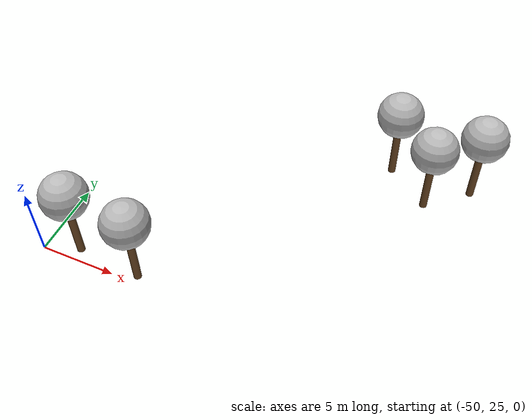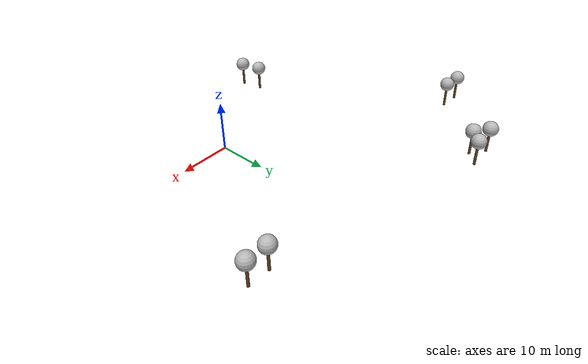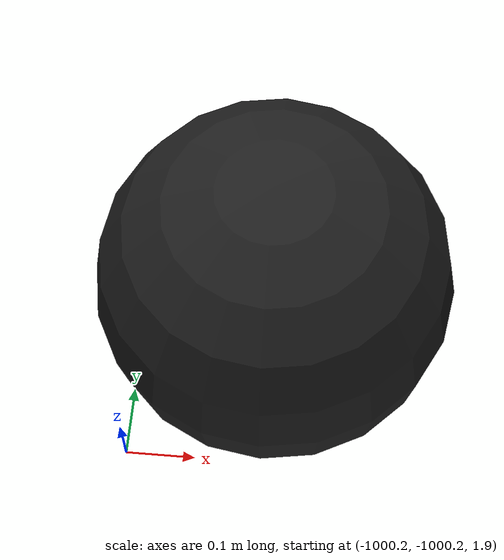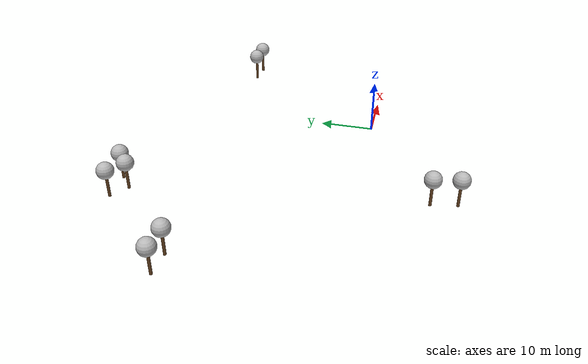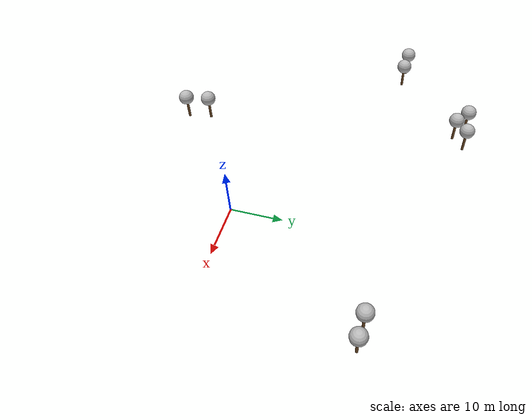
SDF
<sdf version="1.7">
 <world name="default">
  <plugin name="mrs_gazebo_static_transform_republisher_plugin" filename="libMrsGazeboCommonResources_StaticTransformRepublisher.so"/>
  <spherical_coordinates>
   <surface_model>EARTH_WGS84</surface_model>
   <latitude_deg>47.3977</latitude_deg>
   <longitude_deg>8.54559</longitude_deg>
   <elevation>0</elevation>
   <heading_deg>0</heading_deg>
  </spherical_coordinates>
  <physics name="default_physics" default="0" type="ode">
   <ode>
    <solver>
     <type>quick</type>
     <iters>10</iters>
     <sor>1.3</sor>
     <use_dynamic_moi_rescaling>0</use_dynamic_moi_rescaling>
    </solver>
    <constraints>
     <cfm>0</cfm>
     <erp>0.2</erp>
     <contact_max_correcting_vel>1000</contact_max_correcting_vel>
     <contact_surface_layer>0.001</contact_surface_layer>
    </constraints>
   </ode>
   <max_step_size>0.004</max_step_size>
   <real_time_factor>1</real_time_factor>
   <real_time_update_rate>250</real_time_update_rate>
  </physics>
  <scene><shadows>0</shadows><ambient>0.4 0.4 0.4 1</ambient><background>0.7 0.7 0.7 1</background></scene>
  <model name="the_void">
   <static>1</static>
   <link name="link">
    <pose>0 0 0.1 0 -0 0</pose>
    <visual name="the_void">
     <pose>0 0 2 0 -0 0</pose>
     <geometry><sphere><radius>0.25</radius></sphere></geometry>
     <material>
      <script><uri>file://media/materials/scripts/Gazebo.material</uri><name>Gazebo/Black</name></script>
     </material>
    </visual>
   </link>
   <pose>-1000 -1000 0 0 -0 0</pose>
  </model>
  <plugin name="mrs_gazebo_rviz_cam_synchronizer" filename="libMrsGazeboCommonResources_RvizCameraSynchronizer.so">
   <target_frame_id>gazebo_user_camera</target_frame_id>
   <world_origin_frame_id>uav1/gps_origin</world_origin_frame_id>
   <frame_to_follow>uav1</frame_to_follow>
  </plugin>
  <gravity>0 0 -9.8066</gravity>
  <magnetic_field>6e-06 2.3e-05 -4.2e-05</magnetic_field>
  <atmosphere type="adiabatic"/>
  <light name="user_directional_light_0" type="directional">
   <pose>18.5939 6.77546 1 0 -0 0</pose>
   <diffuse>0.5 0.5 0.5 1</diffuse>
   <specular>0.1 0.1 0.1 1</specular>
   <direction>0.1 0.1 -0.9</direction>
   <attenuation>
    <range>20</range>
    <constant>0.5</constant>
    <linear>0.01</linear>
    <quadratic>0.001</quadratic>
   </attenuation>
   <spot><inner_angle>0</inner_angle><outer_angle>0</outer_angle><falloff>0</falloff></spot>
  </light>
  <light name="user_directional_light_1" type="directional">
   <pose>-30.2986 28.8316 1 0 -0 0</pose>
   <diffuse>0.5 0.5 0.5 1</diffuse>
   <specular>0.1 0.1 0.1 1</specular>
   <direction>0.1 0.1 -0.9</direction>
   <attenuation>
    <range>20</range>
    <constant>0.5</constant>
    <linear>0.01</linear>
    <quadratic>0.001</quadratic>
   </attenuation>
   <spot><inner_angle>0</inner_angle><outer_angle>0</outer_angle><falloff>0</falloff></spot>
  </light>
  <light name="sun" type="directional">
   <pose>14.107 -35.5568 10 0 -0 0</pose>
   <diffuse>0.8 0.8 0.8 1</diffuse>
   <specular>0.2 0.2 0.2 1</specular>
   <attenuation>
    <range>1000</range>
    <constant>0.9</constant>
    <linear>0.01</linear>
    <quadratic>0.001</quadratic>
   </attenuation>
   <direction>-0.5 0.1 -0.9</direction>
   <spot><inner_angle>0</inner_angle><outer_angle>0</outer_angle><falloff>0</falloff></spot>
  </light>
  <model name="tree_simple_0_clone">
   <static>1</static>
   <link name="link">
    <pose>0 0 0.1 0 -0 0</pose>
    <inertial>
     <mass>666</mass>
     <inertia>
      <ixx>0.0861167</ixx>
      <ixy>0</ixy>
      <ixz>0</ixz>
      <iyy>0.0861167</iyy>
      <iyz>0</iyz>
      <izz>0.0861167</izz>
     </inertia>
    </inertial>
    <collision name="collision_trunk">
     <pose>0 0 2 0 -0 0</pose>
     <geometry><cylinder><radius>0.25</radius><length>4</length></cylinder></geometry>
     <surface>
      <contact>
       <poissons_ratio>0.347</poissons_ratio>
       <elastic_modulus>8.8e+09</elastic_modulus>
       <ode><kp>100000</kp><kd>100</kd><max_vel>100</max_vel><min_depth>0.001</min_depth></ode>
      </contact>
      <friction>
       <torsional>
        <coefficient>1</coefficient>
        <use_patch_radius>0</use_patch_radius>
        <surface_radius>0.01</surface_radius>
       </torsional>
      </friction>
     </surface>
    </collision>
    <collision name="collision_treetop">
     <pose>0 0 5.2 0 -0 0</pose>
     <geometry><sphere><radius>1.5</radius></sphere></geometry>
     <surface>
      <contact>
       <poissons_ratio>0.347</poissons_ratio>
       <elastic_modulus>8.8e+09</elastic_modulus>
       <ode><kp>100000</kp><kd>100</kd><max_vel>100</max_vel><min_depth>0.001</min_depth></ode>
      </contact>
      <friction>
       <torsional>
        <coefficient>1</coefficient>
        <use_patch_radius>0</use_patch_radius>
        <surface_radius>0.01</surface_radius>
       </torsional>
      </friction>
     </surface>
    </collision>
    <visual name="trunk">
     <pose>0 0 2 0 -0 0</pose>
     <geometry><cylinder><radius>0.25</radius><length>4</length></cylinder></geometry>
     <material>
      <script>
       <uri>model://tree_simple/scripts</uri>
       <uri>model://tree_simple/materials/textures</uri>
       <name>TreeSimple/Trunk</name>
      </script>
     </material>
    </visual>
    <visual name="treetop">
     <pose>0 0 5.2 0 -0 0</pose>
     <geometry><sphere><radius>1.5</radius></sphere></geometry>
     <material>
      <script>
       <uri>model://tree_simple/scripts</uri>
       <uri>model://tree_simple/materials/textures</uri>
       <name>TreeSimple/Treetop</name>
      </script>
     </material>
    </visual>
   </link>
   <pose>-43.3723 25.4571 0 0 -0 0</pose>
  </model>
  <model name="tree_simple_0_clone_0">
   <static>1</static>
   <link name="link">
    <pose>0 0 0.1 0 -0 0</pose>
    <inertial>
     <mass>666</mass>
     <inertia>
      <ixx>0.0861167</ixx>
      <ixy>0</ixy>
      <ixz>0</ixz>
      <iyy>0.0861167</iyy>
      <iyz>0</iyz>
      <izz>0.0861167</izz>
     </inertia>
    </inertial>
    <collision name="collision_trunk">
     <pose>0 0 2 0 -0 0</pose>
     <geometry><cylinder><radius>0.25</radius><length>4</length></cylinder></geometry>
     <surface>
      <contact>
       <poissons_ratio>0.347</poissons_ratio>
       <elastic_modulus>8.8e+09</elastic_modulus>
       <ode><kp>100000</kp><kd>100</kd><max_vel>100</max_vel><min_depth>0.001</min_depth></ode>
      </contact>
      <friction>
       <torsional>
        <coefficient>1</coefficient>
        <use_patch_radius>0</use_patch_radius>
        <surface_radius>0.01</surface_radius>
       </torsional>
      </friction>
     </surface>
    </collision>
    <collision name="collision_treetop">
     <pose>0 0 5.2 0 -0 0</pose>
     <geometry><sphere><radius>1.5</radius></sphere></geometry>
     <surface>
      <contact>
       <poissons_ratio>0.347</poissons_ratio>
       <elastic_modulus>8.8e+09</elastic_modulus>
       <ode><kp>100000</kp><kd>100</kd><max_vel>100</max_vel><min_depth>0.001</min_depth></ode>
      </contact>
      <friction>
       <torsional>
        <coefficient>1</coefficient>
        <use_patch_radius>0</use_patch_radius>
        <surface_radius>0.01</surface_radius>
       </torsional>
      </friction>
     </surface>
    </collision>
    <visual name="trunk">
     <pose>0 0 2 0 -0 0</pose>
     <geometry><cylinder><radius>0.25</radius><length>4</length></cylinder></geometry>
     <material>
      <script>
       <uri>model://tree_simple/scripts</uri>
       <uri>model://tree_simple/materials/textures</uri>
       <name>TreeSimple/Trunk</name>
      </script>
     </material>
    </visual>
    <visual name="treetop">
     <pose>0 0 5.2 0 -0 0</pose>
     <geometry><sphere><radius>1.5</radius></sphere></geometry>
     <material>
      <script>
       <uri>model://tree_simple/scripts</uri>
       <uri>model://tree_simple/materials/textures</uri>
       <name>TreeSimple/Treetop</name>
      </script>
     </material>
    </visual>
   </link>
   <pose>-47.7139 25.7716 0 0 -0 0</pose>
  </model>
  <model name="tree_simple_0_clone_1">
   <static>1</static>
   <link name="link">
    <pose>0 0 0.1 0 -0 0</pose>
    <inertial>
     <mass>666</mass>
     <inertia>
      <ixx>0.0861167</ixx>
      <ixy>0</ixy>
      <ixz>0</ixz>
      <iyy>0.0861167</iyy>
      <iyz>0</iyz>
      <izz>0.0861167</izz>
     </inertia>
    </inertial>
    <collision name="collision_trunk">
     <pose>0 0 2 0 -0 0</pose>
     <geometry><cylinder><radius>0.25</radius><length>4</length></cylinder></geometry>
     <surface>
      <contact>
       <poissons_ratio>0.347</poissons_ratio>
       <elastic_modulus>8.8e+09</elastic_modulus>
       <ode><kp>100000</kp><kd>100</kd><max_vel>100</max_vel><min_depth>0.001</min_depth></ode>
      </contact>
      <friction>
       <torsional>
        <coefficient>1</coefficient>
        <use_patch_radius>0</use_patch_radius>
        <surface_radius>0.01</surface_radius>
       </torsional>
      </friction>
     </surface>
    </collision>
    <collision name="collision_treetop">
     <pose>0 0 5.2 0 -0 0</pose>
     <geometry><sphere><radius>1.5</radius></sphere></geometry>
     <surface>
      <contact>
       <poissons_ratio>0.347</poissons_ratio>
       <elastic_modulus>8.8e+09</elastic_modulus>
       <ode><kp>100000</kp><kd>100</kd><max_vel>100</max_vel><min_depth>0.001</min_depth></ode>
      </contact>
      <friction>
       <torsional>
        <coefficient>1</coefficient>
        <use_patch_radius>0</use_patch_radius>
        <surface_radius>0.01</surface_radius>
       </torsional>
      </friction>
     </surface>
    </collision>
    <visual name="trunk">
     <pose>0 0 2 0 -0 0</pose>
     <geometry><cylinder><radius>0.25</radius><length>4</length></cylinder></geometry>
     <material>
      <script>
       <uri>model://tree_simple/scripts</uri>
       <uri>model://tree_simple/materials/textures</uri>
       <name>TreeSimple/Trunk</name>
      </script>
     </material>
    </visual>
    <visual name="treetop">
     <pose>0 0 5.2 0 -0 0</pose>
     <geometry><sphere><radius>1.5</radius></sphere></geometry>
     <material>
      <script>
       <uri>model://tree_simple/scripts</uri>
       <uri>model://tree_simple/materials/textures</uri>
       <name>TreeSimple/Treetop</name>
      </script>
     </material>
    </visual>
   </link>
   <pose>-26.3823 40.3611 0 0 -0 0</pose>
  </model>
  <model name="tree_simple_0_clone_2">
   <static>1</static>
   <link name="link">
    <pose>0 0 0.1 0 -0 0</pose>
    <inertial>
     <mass>666</mass>
     <inertia>
      <ixx>0.0861167</ixx>
      <ixy>0</ixy>
      <ixz>0</ixz>
      <iyy>0.0861167</iyy>
      <iyz>0</iyz>
      <izz>0.0861167</izz>
     </inertia>
    </inertial>
    <collision name="collision_trunk">
     <pose>0 0 2 0 -0 0</pose>
     <geometry><cylinder><radius>0.25</radius><length>4</length></cylinder></geometry>
     <surface>
      <contact>
       <poissons_ratio>0.347</poissons_ratio>
       <elastic_modulus>8.8e+09</elastic_modulus>
       <ode><kp>100000</kp><kd>100</kd><max_vel>100</max_vel><min_depth>0.001</min_depth></ode>
      </contact>
      <friction>
       <torsional>
        <coefficient>1</coefficient>
        <use_patch_radius>0</use_patch_radius>
        <surface_radius>0.01</surface_radius>
       </torsional>
      </friction>
     </surface>
    </collision>
    <collision name="collision_treetop">
     <pose>0 0 5.2 0 -0 0</pose>
     <geometry><sphere><radius>1.5</radius></sphere></geometry>
     <surface>
      <contact>
       <poissons_ratio>0.347</poissons_ratio>
       <elastic_modulus>8.8e+09</elastic_modulus>
       <ode><kp>100000</kp><kd>100</kd><max_vel>100</max_vel><min_depth>0.001</min_depth></ode>
      </contact>
      <friction>
       <torsional>
        <coefficient>1</coefficient>
        <use_patch_radius>0</use_patch_radius>
        <surface_radius>0.01</surface_radius>
       </torsional>
      </friction>
     </surface>
    </collision>
    <visual name="trunk">
     <pose>0 0 2 0 -0 0</pose>
     <geometry><cylinder><radius>0.25</radius><length>4</length></cylinder></geometry>
     <material>
      <script>
       <uri>model://tree_simple/scripts</uri>
       <uri>model://tree_simple/materials/textures</uri>
       <name>TreeSimple/Trunk</name>
      </script>
     </material>
    </visual>
    <visual name="treetop">
     <pose>0 0 5.2 0 -0 0</pose>
     <geometry><sphere><radius>1.5</radius></sphere></geometry>
     <material>
      <script>
       <uri>model://tree_simple/scripts</uri>
       <uri>model://tree_simple/materials/textures</uri>
       <name>TreeSimple/Treetop</name>
      </script>
     </material>
    </visual>
   </link>
   <pose>-28.9682 38.1338 0 0 -0 0</pose>
  </model>
  <model name="tree_simple_0_clone_3">
   <static>1</static>
   <link name="link">
    <pose>0 0 0.1 0 -0 0</pose>
    <inertial>
     <mass>666</mass>
     <inertia>
      <ixx>0.0861167</ixx>
      <ixy>0</ixy>
      <ixz>0</ixz>
      <iyy>0.0861167</iyy>
      <iyz>0</iyz>
      <izz>0.0861167</izz>
     </inertia>
    </inertial>
    <collision name="collision_trunk">
     <pose>0 0 2 0 -0 0</pose>
     <geometry><cylinder><radius>0.25</radius><length>4</length></cylinder></geometry>
     <surface>
      <contact>
       <poissons_ratio>0.347</poissons_ratio>
       <elastic_modulus>8.8e+09</elastic_modulus>
       <ode><kp>100000</kp><kd>100</kd><max_vel>100</max_vel><min_depth>0.001</min_depth></ode>
      </contact>
      <friction>
       <torsional>
        <coefficient>1</coefficient>
        <use_patch_radius>0</use_patch_radius>
        <surface_radius>0.01</surface_radius>
       </torsional>
      </friction>
     </surface>
    </collision>
    <collision name="collision_treetop">
     <pose>0 0 5.2 0 -0 0</pose>
     <geometry><sphere><radius>1.5</radius></sphere></geometry>
     <surface>
      <contact>
       <poissons_ratio>0.347</poissons_ratio>
       <elastic_modulus>8.8e+09</elastic_modulus>
       <ode><kp>100000</kp><kd>100</kd><max_vel>100</max_vel><min_depth>0.001</min_depth></ode>
      </contact>
      <friction>
       <torsional>
        <coefficient>1</coefficient>
        <use_patch_radius>0</use_patch_radius>
        <surface_radius>0.01</surface_radius>
       </torsional>
      </friction>
     </surface>
    </collision>
    <visual name="trunk">
     <pose>0 0 2 0 -0 0</pose>
     <geometry><cylinder><radius>0.25</radius><length>4</length></cylinder></geometry>
     <material>
      <script>
       <uri>model://tree_simple/scripts</uri>
       <uri>model://tree_simple/materials/textures</uri>
       <name>TreeSimple/Trunk</name>
      </script>
     </material>
    </visual>
    <visual name="treetop">
     <pose>0 0 5.2 0 -0 0</pose>
     <geometry><sphere><radius>1.5</radius></sphere></geometry>
     <material>
      <script>
       <uri>model://tree_simple/scripts</uri>
       <uri>model://tree_simple/materials/textures</uri>
       <name>TreeSimple/Treetop</name>
      </script>
     </material>
    </visual>
   </link>
   <pose>-31.8666 40.2909 0 0 -0 0</pose>
  </model>
  <model name="tree_simple_0_clone_4">
   <static>1</static>
   <link name="link">
    <pose>0 0 0.1 0 -0 0</pose>
    <inertial>
     <mass>666</mass>
     <inertia>
      <ixx>0.0861167</ixx>
      <ixy>0</ixy>
      <ixz>0</ixz>
      <iyy>0.0861167</iyy>
      <iyz>0</iyz>
      <izz>0.0861167</izz>
     </inertia>
    </inertial>
    <collision name="collision_trunk">
     <pose>0 0 2 0 -0 0</pose>
     <geometry><cylinder><radius>0.25</radius><length>4</length></cylinder></geometry>
     <surface>
      <contact>
       <poissons_ratio>0.347</poissons_ratio>
       <elastic_modulus>8.8e+09</elastic_modulus>
       <ode><kp>100000</kp><kd>100</kd><max_vel>100</max_vel><min_depth>0.001</min_depth></ode>
      </contact>
      <friction>
       <torsional>
        <coefficient>1</coefficient>
        <use_patch_radius>0</use_patch_radius>
        <surface_radius>0.01</surface_radius>
       </torsional>
      </friction>
     </surface>
    </collision>
    <collision name="collision_treetop">
     <pose>0 0 5.2 0 -0 0</pose>
     <geometry><sphere><radius>1.5</radius></sphere></geometry>
     <surface>
      <contact>
       <poissons_ratio>0.347</poissons_ratio>
       <elastic_modulus>8.8e+09</elastic_modulus>
       <ode><kp>100000</kp><kd>100</kd><max_vel>100</max_vel><min_depth>0.001</min_depth></ode>
      </contact>
      <friction>
       <torsional>
        <coefficient>1</coefficient>
        <use_patch_radius>0</use_patch_radius>
        <surface_radius>0.01</surface_radius>
       </torsional>
      </friction>
     </surface>
    </collision>
    <visual name="trunk">
     <pose>0 0 2 0 -0 0</pose>
     <geometry><cylinder><radius>0.25</radius><length>4</length></cylinder></geometry>
     <material>
      <script>
       <uri>model://tree_simple/scripts</uri>
       <uri>model://tree_simple/materials/textures</uri>
       <name>TreeSimple/Trunk</name>
      </script>
     </material>
    </visual>
    <visual name="treetop">
     <pose>0 0 5.2 0 -0 0</pose>
     <geometry><sphere><radius>1.5</radius></sphere></geometry>
     <material>
      <script>
       <uri>model://tree_simple/scripts</uri>
       <uri>model://tree_simple/materials/textures</uri>
       <name>TreeSimple/Treetop</name>
      </script>
     </material>
    </visual>
   </link>
   <pose>-22.4042 -12.6296 0 0 -0 0</pose>
  </model>
  <model name="tree_simple_0_clone_5">
   <static>1</static>
   <link name="link">
    <pose>0 0 0.1 0 -0 0</pose>
    <inertial>
     <mass>666</mass>
     <inertia>
      <ixx>0.0861167</ixx>
      <ixy>0</ixy>
      <ixz>0</ixz>
      <iyy>0.0861167</iyy>
      <iyz>0</iyz>
      <izz>0.0861167</izz>
     </inertia>
    </inertial>
    <collision name="collision_trunk">
     <pose>0 0 2 0 -0 0</pose>
     <geometry><cylinder><radius>0.25</radius><length>4</length></cylinder></geometry>
     <surface>
      <contact>
       <poissons_ratio>0.347</poissons_ratio>
       <elastic_modulus>8.8e+09</elastic_modulus>
       <ode><kp>100000</kp><kd>100</kd><max_vel>100</max_vel><min_depth>0.001</min_depth></ode>
      </contact>
      <friction>
       <torsional>
        <coefficient>1</coefficient>
        <use_patch_radius>0</use_patch_radius>
        <surface_radius>0.01</surface_radius>
       </torsional>
      </friction>
     </surface>
    </collision>
    <collision name="collision_treetop">
     <pose>0 0 5.2 0 -0 0</pose>
     <geometry><sphere><radius>1.5</radius></sphere></geometry>
     <surface>
      <contact>
       <poissons_ratio>0.347</poissons_ratio>
       <elastic_modulus>8.8e+09</elastic_modulus>
       <ode><kp>100000</kp><kd>100</kd><max_vel>100</max_vel><min_depth>0.001</min_depth></ode>
      </contact>
      <friction>
       <torsional>
        <coefficient>1</coefficient>
        <use_patch_radius>0</use_patch_radius>
        <surface_radius>0.01</surface_radius>
       </torsional>
      </friction>
     </surface>
    </collision>
    <visual name="trunk">
     <pose>0 0 2 0 -0 0</pose>
     <geometry><cylinder><radius>0.25</radius><length>4</length></cylinder></geometry>
     <material>
      <script>
       <uri>model://tree_simple/scripts</uri>
       <uri>model://tree_simple/materials/textures</uri>
       <name>TreeSimple/Trunk</name>
      </script>
     </material>
    </visual>
    <visual name="treetop">
     <pose>0 0 5.2 0 -0 0</pose>
     <geometry><sphere><radius>1.5</radius></sphere></geometry>
     <material>
      <script>
       <uri>model://tree_simple/scripts</uri>
       <uri>model://tree_simple/materials/textures</uri>
       <name>TreeSimple/Treetop</name>
      </script>
     </material>
    </visual>
   </link>
   <pose>-21.5938 -17.1582 0 0 -0 0</pose>
  </model>
  <model name="tree_simple_clone">
   <static>1</static>
   <link name="link">
    <pose>0 0 0.1 0 -0 0</pose>
    <inertial>
     <mass>666</mass>
     <inertia>
      <ixx>0.0861167</ixx>
      <ixy>0</ixy>
      <ixz>0</ixz>
      <iyy>0.0861167</iyy>
      <iyz>0</iyz>
      <izz>0.0861167</izz>
     </inertia>
    </inertial>
    <collision name="collision_trunk">
     <pose>0 0 2 0 -0 0</pose>
     <geometry><cylinder><radius>0.25</radius><length>4</length></cylinder></geometry>
     <surface>
      <contact>
       <poissons_ratio>0.347</poissons_ratio>
       <elastic_modulus>8.8e+09</elastic_modulus>
       <ode><kp>100000</kp><kd>100</kd><max_vel>100</max_vel><min_depth>0.001</min_depth></ode>
      </contact>
      <friction>
       <torsional>
        <coefficient>1</coefficient>
        <use_patch_radius>0</use_patch_radius>
        <surface_radius>0.01</surface_radius>
       </torsional>
      </friction>
     </surface>
    </collision>
    <collision name="collision_treetop">
     <pose>0 0 5.2 0 -0 0</pose>
     <geometry><sphere><radius>1.5</radius></sphere></geometry>
     <surface>
      <contact>
       <poissons_ratio>0.347</poissons_ratio>
       <elastic_modulus>8.8e+09</elastic_modulus>
       <ode><kp>100000</kp><kd>100</kd><max_vel>100</max_vel><min_depth>0.001</min_depth></ode>
      </contact>
      <friction>
       <torsional>
        <coefficient>1</coefficient>
        <use_patch_radius>0</use_patch_radius>
        <surface_radius>0.01</surface_radius>
       </torsional>
      </friction>
     </surface>
    </collision>
    <visual name="trunk">
     <pose>0 0 2 0 -0 0</pose>
     <geometry><cylinder><radius>0.25</radius><length>4</length></cylinder></geometry>
     <material>
      <script>
       <uri>model://tree_simple/scripts</uri>
       <uri>model://tree_simple/materials/textures</uri>
       <name>TreeSimple/Trunk</name>
      </script>
     </material>
    </visual>
    <visual name="treetop">
     <pose>0 0 5.2 0 -0 0</pose>
     <geometry><sphere><radius>1.5</radius></sphere></geometry>
     <material>
      <script>
       <uri>model://tree_simple/scripts</uri>
       <uri>model://tree_simple/materials/textures</uri>
       <name>TreeSimple/Treetop</name>
      </script>
     </material>
    </visual>
   </link>
   <pose>16.7668 28.3046 0 0 -0 0</pose>
  </model>
  <model name="tree_simple_clone_0">
   <static>1</static>
   <link name="link">
    <pose>0 0 0.1 0 -0 0</pose>
    <inertial>
     <mass>666</mass>
     <inertia>
      <ixx>0.0861167</ixx>
      <ixy>0</ixy>
      <ixz>0</ixz>
      <iyy>0.0861167</iyy>
      <iyz>0</iyz>
      <izz>0.0861167</izz>
     </inertia>
    </inertial>
    <collision name="collision_trunk">
     <pose>0 0 2 0 -0 0</pose>
     <geometry><cylinder><radius>0.25</radius><length>4</length></cylinder></geometry>
     <surface>
      <contact>
       <poissons_ratio>0.347</poissons_ratio>
       <elastic_modulus>8.8e+09</elastic_modulus>
       <ode><kp>100000</kp><kd>100</kd><max_vel>100</max_vel><min_depth>0.001</min_depth></ode>
      </contact>
      <friction>
       <torsional>
        <coefficient>1</coefficient>
        <use_patch_radius>0</use_patch_radius>
        <surface_radius>0.01</surface_radius>
       </torsional>
      </friction>
     </surface>
    </collision>
    <collision name="collision_treetop">
     <pose>0 0 5.2 0 -0 0</pose>
     <geometry><sphere><radius>1.5</radius></sphere></geometry>
     <surface>
      <contact>
       <poissons_ratio>0.347</poissons_ratio>
       <elastic_modulus>8.8e+09</elastic_modulus>
       <ode><kp>100000</kp><kd>100</kd><max_vel>100</max_vel><min_depth>0.001</min_depth></ode>
      </contact>
      <friction>
       <torsional>
        <coefficient>1</coefficient>
        <use_patch_radius>0</use_patch_radius>
        <surface_radius>0.01</surface_radius>
       </torsional>
      </friction>
     </surface>
    </collision>
    <visual name="trunk">
     <pose>0 0 2 0 -0 0</pose>
     <geometry><cylinder><radius>0.25</radius><length>4</length></cylinder></geometry>
     <material>
      <script>
       <uri>model://tree_simple/scripts</uri>
       <uri>model://tree_simple/materials/textures</uri>
       <name>TreeSimple/Trunk</name>
      </script>
     </material>
    </visual>
    <visual name="treetop">
     <pose>0 0 5.2 0 -0 0</pose>
     <geometry><sphere><radius>1.5</radius></sphere></geometry>
     <material>
      <script>
       <uri>model://tree_simple/scripts</uri>
       <uri>model://tree_simple/materials/textures</uri>
       <name>TreeSimple/Treetop</name>
      </script>
     </material>
    </visual>
   </link>
   <pose>20.7538 28.0799 0 0 -0 0</pose>
  </model>
 </world>
</sdf>
